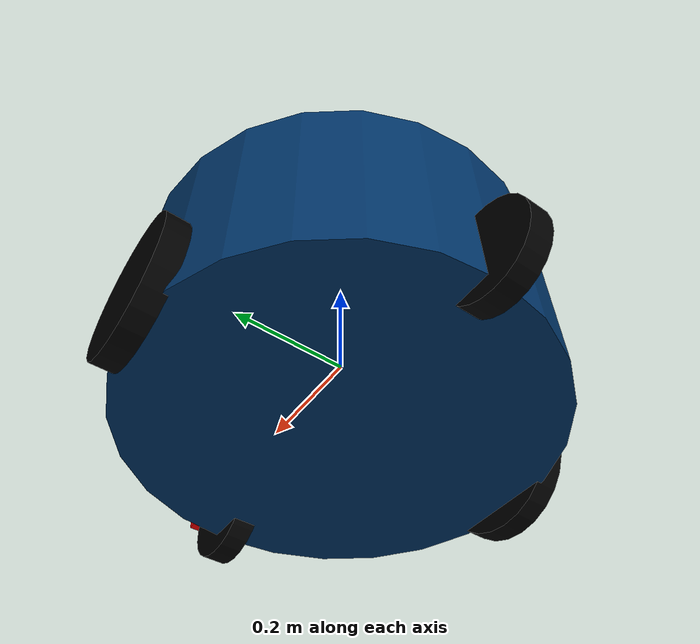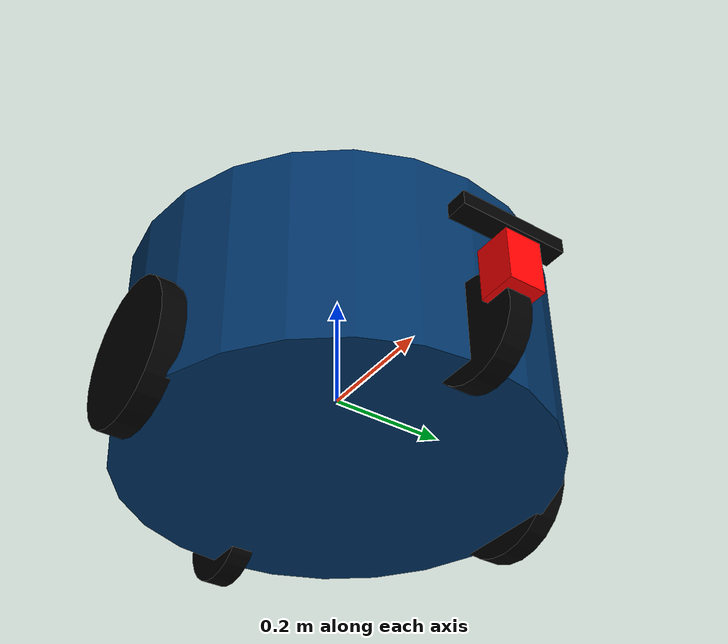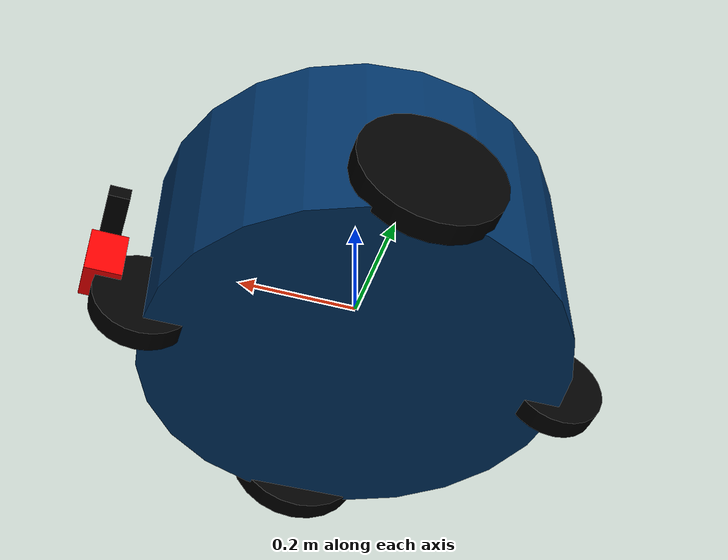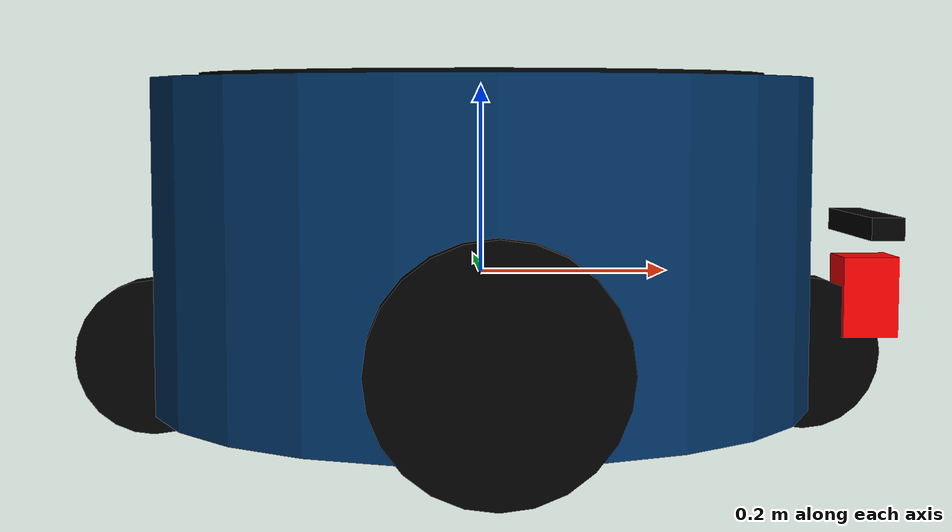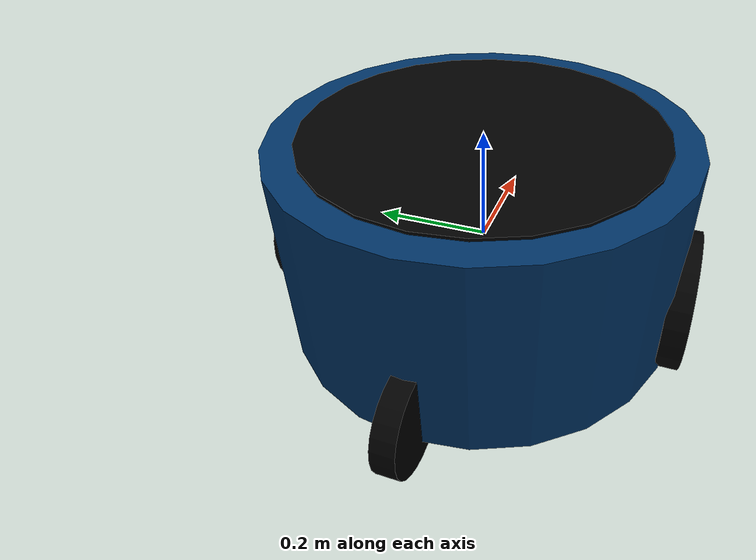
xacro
<?xml version="1.0"?>
<robot name="tobot" xmlns:xacro="http://www.ros.org/wiki/xacro">

  <!-- Constant for the xacro model -->

  <xacro:property name="GROUND_CLEARANCE" value="0.0335" />
  <xacro:property name="width" value="0.35" />
  <xacro:property name="bodylen" value="0.3465" />
  <xacro:property name="wheel_w" value="0.039" />
  <xacro:property name="wheel_rad" value="0.1194" />
  <xacro:property name="plat_rad" value="0.3" />
  <xacro:property name="plat_len" value="0.005" />
  <xacro:property name="HIGH_PLATFORM" value="0.15" />
  <xacro:property name="posz_laser" value="0.285" />
  <xacro:property name="posz_camera" value="0.5" />
  <xacro:property name="fwheel_rad" value="0.08276" />
  <xacro:property name="PI" value="3.1415" />

  <!--Mass values for each link in kg-->
  <xacro:property name="base_mass" value="30" />
  <xacro:property name="plat_mass" value="2" />
  <xacro:property name="actvwheel_mass" value="10" />
  <xacro:property name="psvwheel_mass" value="1" />

  <material name="black">
    <color rgba="0 0 0 1"/>
  </material>
  <material name="red">
    <color rgba="1 0 0 1"/>
  </material>
  <material name="blue">
    <color rgba="0 0.2 0.4 1"/>
  </material>

  <!-- Actual frame and materials -->

  <!--Base_link-->
  <link name="base_link">
    <visual>
      <geometry>
         <cylinder length="${bodylen}" radius="${width}"/>
      </geometry>
      <origin rpy="0 0 0" xyz="0 0 ${GROUND_CLEARANCE}"/>
      <material name="blue"/>
    </visual>
    <collision>
      <geometry>
         <cylinder length="${bodylen}" radius="${width}"/>
      </geometry>
      <origin rpy="0 0 0" xyz="0 0 ${bodylen/2}"/>
    </collision>
    <!--Actually, I will calculate it as a thick wall cylinder-->
    <!--with inner radius=0.1 and outer radius= width -->
    <inertial>
        <mass value="${base_mass}" />
        <origin rpy="0 0 0" xyz="0 0 ${GROUND_CLEARANCE}" />
        <inertia
          ixx="${(1/12) * base_mass * ( 3 * (0.1 * 0.1 + width * width) + bodylen)}" ixy="0.0" ixz="0.0"
          iyy="${(1/12) * base_mass * ( 3 * (0.1 * 0.1 + width * width) + bodylen)}" iyz="0.0"
          izz="${0.5 * base_mass * ( 0.1 * 0.1 + width * width)}" />
    </inertial>
  </link>

  <!--Left Wheel-->
  <link name="lwheel">
    <visual>
      <geometry>
        <cylinder length="${wheel_w}" radius="${wheel_rad}"/>
      </geometry>
      <origin rpy="-1.57075 0 0" xyz="0 0 ${GROUND_CLEARANCE + 0.05}"/>
      <material name="black"/>
    </visual>

    <collsion>
      <geometry>
        <cylinder length="${wheel_w}" radius="${wheel_rad}"/>
      </geometry>
      <origin rpy="-1.57075 0 0" xyz="0 0 ${GROUND_CLEARANCE + 0.05}"/>
    </collsion>
    <inertial>
        <mass value="0.010" />
        <origin rpy="-1.57075 0 0" xyz="0 0 ${GROUND_CLEARANCE + 0.05}" />
        <inertia
          ixx="${(1/12) * actvwheel_mass * (3 * wheel_rad * wheel_rad + wheel_w * wheel_w)}" ixy="0.0" ixz="0.0"
          iyy="${(1/12) * actvwheel_mass * (3 * wheel_rad * wheel_rad + wheel_w * wheel_w)}" iyz="0.0"
          izz="${0.5 * actvwheel_mass * wheel_rad * wheel_rad }" />
    </inertial>
  </link>

  <joint name="base_to_lwheel" type="continuous">
    <parent link="base_link"/>
    <child link="lwheel"/>
    <axis xyz="0 1 0"/>
    <origin xyz="0 ${width} ${GROUND_CLEARANCE-(bodylen/2)}" rpy="0 0 0"/>
  </joint>

  <!--Right wheel-->
  <link name="rwheel">
    <visual>
      <geometry>
        <cylinder length="${wheel_w}" radius="${wheel_rad}"/>
      </geometry>
      <origin rpy="-1.57075 0 0" xyz="0 0 ${GROUND_CLEARANCE + 0.05}"/>
      <material name="black"/>
    </visual>

    <collsion>
      <geometry>
        <cylinder length="${wheel_w}" radius="${wheel_rad}"/>
      </geometry>
      <origin rpy="-1.57075 0 0" xyz="0 0 ${GROUND_CLEARANCE + 0.05}"/>
    </collsion>
    <inertial>
        <mass value="0.010" />
        <origin rpy="-1.57075 0 0" xyz="0 0 ${GROUND_CLEARANCE + 0.05}" />
        <inertia
          ixx="${(1/12) * actvwheel_mass * (3 * wheel_rad * wheel_rad + wheel_w * wheel_w)}" ixy="0.0" ixz="0.0"
          iyy="${(1/12) * actvwheel_mass * (3 * wheel_rad * wheel_rad + wheel_w * wheel_w)}" iyz="0.0"
          izz="${0.5 * actvwheel_mass * wheel_rad * wheel_rad }" />
    </inertial>
  </link>

  <joint name="base_to_rwheel" type="continuous">
    <parent link="base_link"/>
    <child link="rwheel"/>
    <axis xyz="0 1 0"/>
    <origin xyz="0 ${-width} ${GROUND_CLEARANCE-(bodylen/2)}" rpy="0 0 0"/>
  </joint>

  <!--LASER-->
  <link name="laser">
    <visual>
      <geometry>
        <box size="0.06 0.06 0.087"/>
      </geometry>
      <origin rpy="0 0 0" xyz="0 0 0"/>
      <material name="red"/>
    </visual>
    <inertial>
        <mass value="0.270" />
        <origin xyz="0 0 0" />
        <inertia
          ixx="2.632e-4" ixy="0" ixz="0"
          iyy="2.632e-4" iyz="0"
          izz="1.62e-4" />
    </inertial>
  </link>

  <joint name="base_laser" type="fixed">
    <parent link="base_link"/>
    <child link="laser"/>
    <origin xyz="${width + 0.07} 0 ${GROUND_CLEARANCE-bodylen+posz_laser} " rpy="0 0 0"/>
  </joint>

  <!--FRONT WHEEL-->
  <link name="fwheel">
    <visual>
      <geometry>
        <cylinder length="${wheel_w}" radius="${fwheel_rad}"/>
      </geometry>
      <origin rpy="-1.57075 0 0" xyz="0 0 ${GROUND_CLEARANCE + 0.1}"/>
      <material name="black"/>
    </visual>

    <collsion>
      <geometry>
        <cylinder length="${wheel_w}" radius="${fwheel_rad}"/>
      </geometry>
      <origin rpy="-1.57075 0 0" xyz="0 0 ${GROUND_CLEARANCE + 0.1}"/>
    </collsion>
    <inertial>
        <mass value="0.010" />
        <origin rpy="-1.57075 0 0" xyz="0 0 ${GROUND_CLEARANCE + 0.1}" />
        <inertia
          ixx="${(1/12) * psvwheel_mass * (3 * fwheel_rad * fwheel_rad + wheel_w * wheel_w)}" ixy="0.0" ixz="0.0"
          iyy="${(1/12) * psvwheel_mass * (3 * fwheel_rad * fwheel_rad + wheel_w * wheel_w)}" iyz="0.0"
          izz="${0.5 * psvwheel_mass * fwheel_rad * fwheel_rad }" />
    </inertial>
  </link>

  <joint name="base_to_fwheel" type="continuous">
    <parent link="base_link"/>
    <child link="fwheel"/>
    <axis xyz="0 1 0"/>
    <origin xyz="${width} 0 ${GROUND_CLEARANCE-(bodylen/2)-(fwheel_rad)}" rpy="0 0 0"/>
  </joint>

  <!--BACK WHEEL-->
  <link name="bwheel">
    <visual>
      <geometry>
        <cylinder length="${wheel_w}" radius="${fwheel_rad}"/>
      </geometry>
      <origin rpy="-1.57075 0 0" xyz="0 0 ${GROUND_CLEARANCE + 0.1}"/>
      <material name="black"/>
    </visual>

    <collsion>
      <geometry>
        <cylinder length="${wheel_w}" radius="${fwheel_rad}"/>
      </geometry>
      <origin rpy="-1.57075 0 0" xyz="0 0 ${GROUND_CLEARANCE + 0.1}"/>
    </collsion>
    <inertial>
        <mass value="0.010" />
        <origin rpy="-1.57075 0 0" xyz="0 0 ${GROUND_CLEARANCE + 0.1}" />
        <inertia
          ixx="${(1/12) * psvwheel_mass * (3 * fwheel_rad * fwheel_rad + wheel_w * wheel_w)}" ixy="0.0" ixz="0.0"
          iyy="${(1/12) * psvwheel_mass * (3 * fwheel_rad * fwheel_rad + wheel_w * wheel_w)}" iyz="0.0"
          izz="${0.5 * psvwheel_mass * fwheel_rad * fwheel_rad }" />
    </inertial>
  </link>

  <joint name="base_to_bwheel" type="continuous">
    <parent link="base_link"/>
    <child link="bwheel"/>
    <axis xyz="0 1 0"/>
    <origin xyz="${-width} 0 ${GROUND_CLEARANCE-(bodylen/2)-(fwheel_rad)}" rpy="0 0 0"/>
  </joint>

  <!-- PLatform qui se leve-->
  <link name="platform">
    <visual>
      <geometry>
         <cylinder length="${plat_len}" radius="${plat_rad}"/>
      </geometry>
      <origin rpy="0 0 0" xyz="0 0 ${plat_len/2}"/>
      <material name="black"/>
    </visual>
    <inertial>
        <mass value="0.001" />
        <origin xyz="${-width} 0 ${GROUND_CLEARANCE-(bodylen/2)-(fwheel_rad)}" rpy="0 0 0" />
        <inertia
          ixx="${(1/12) * plat_mass * (3 * plat_rad * plat_rad + 0.005 * 0.005)}" ixy="0.0" ixz="0.0"
          iyy="${(1/12) * plat_mass * (3 * plat_rad * plat_rad + 0.005 * 0.005)}" iyz="0.0"
          izz="${0.5 * plat_mass * plat_rad * plat_rad }" />
    </inertial>
  </link>

  <joint name="base_platform" type="prismatic">
    <parent link="base_link"/>
    <child link="platform"/>
    <axis xyz="0 0 1"/>
    <limit effort="1000.0" lower="0" upper="${HIGH_PLATFORM}" velocity="0.5"/>
    <origin rpy="0 0 0" xyz="0 0 ${(bodylen/2)+GROUND_CLEARANCE}"/>
  </joint>

  <!--CAMERA-->
  <link name="camera_link">
    <visual>
      <geometry>
        <box size="0.035 0.178 0.024"/>
      </geometry>
      <origin rpy="0 0 0" xyz="0 0 0"/>
      <material name="black"/>
    </visual>
    <inertial>
        <mass value="0.200" />
        <origin xyz="0 0 0" />
        <inertia ixx="5.8083e-4" ixy="0" ixz="0"
                 iyy="3.0833e-5" iyz="0"
                 izz="5.9083e-4" />
   </inertial>
  </link>

  <joint name="camera" type="fixed">
    <parent link="base_link"/>
    <child link="camera_link"/>
    <origin xyz="${width + 0.07} 0 0.05 " rpy="0 0 0"/>
  </joint>

</robot>
